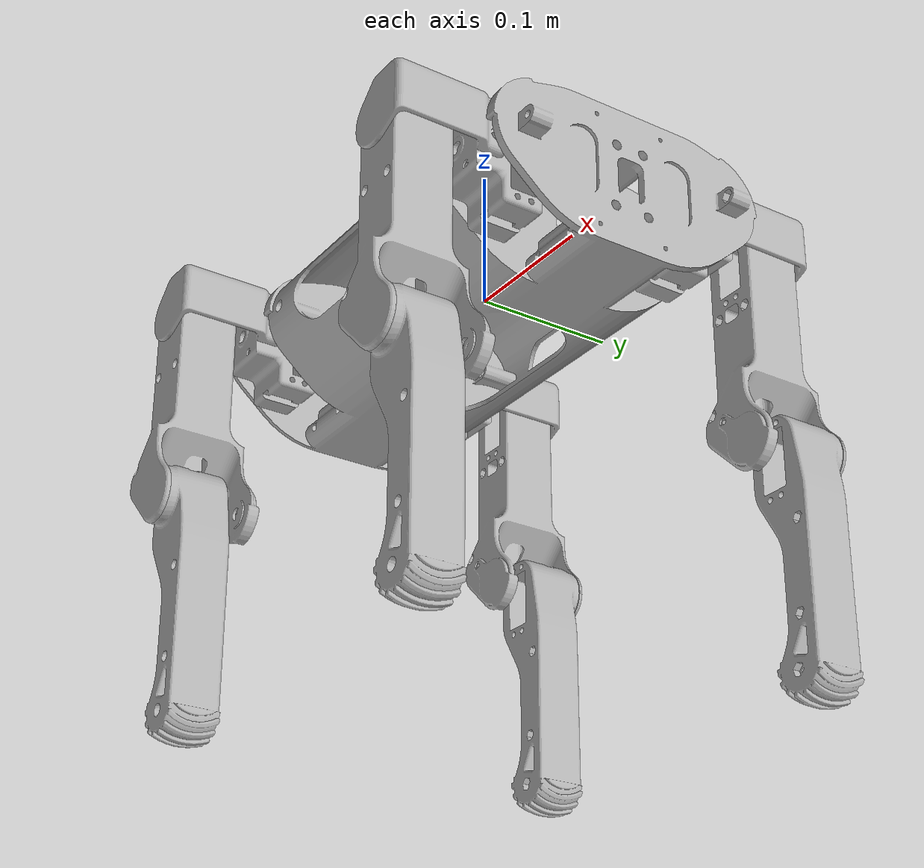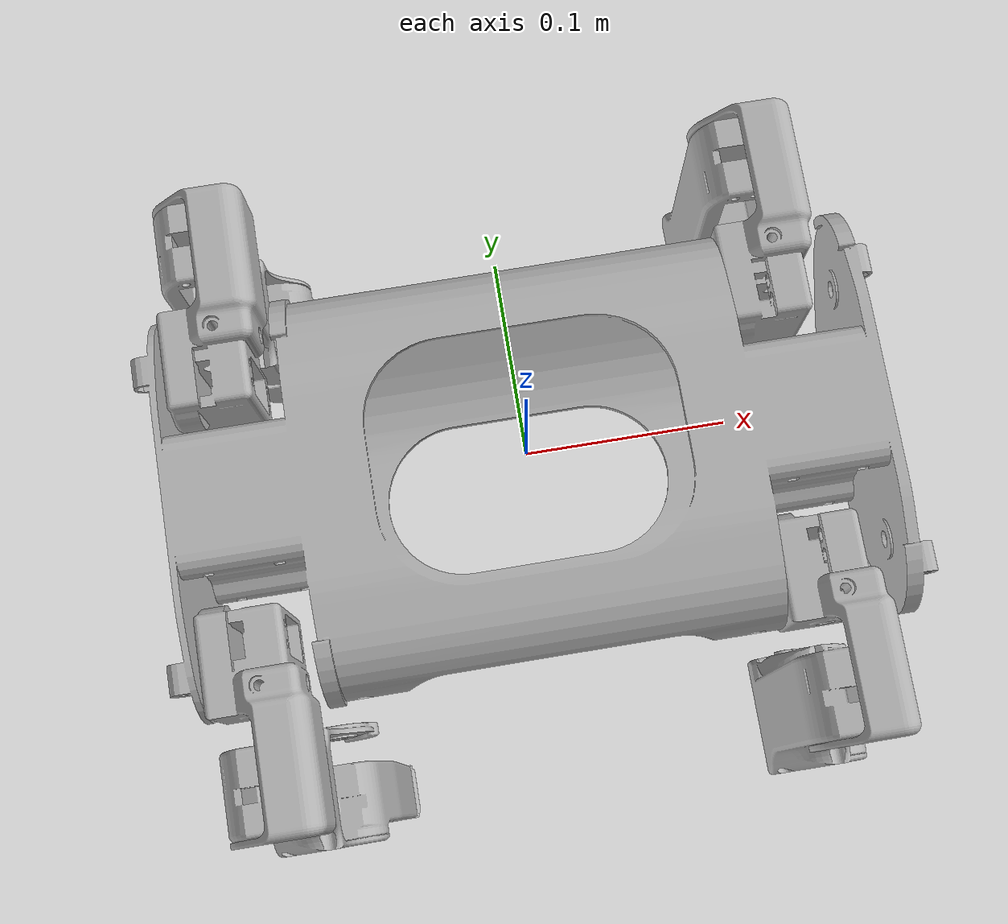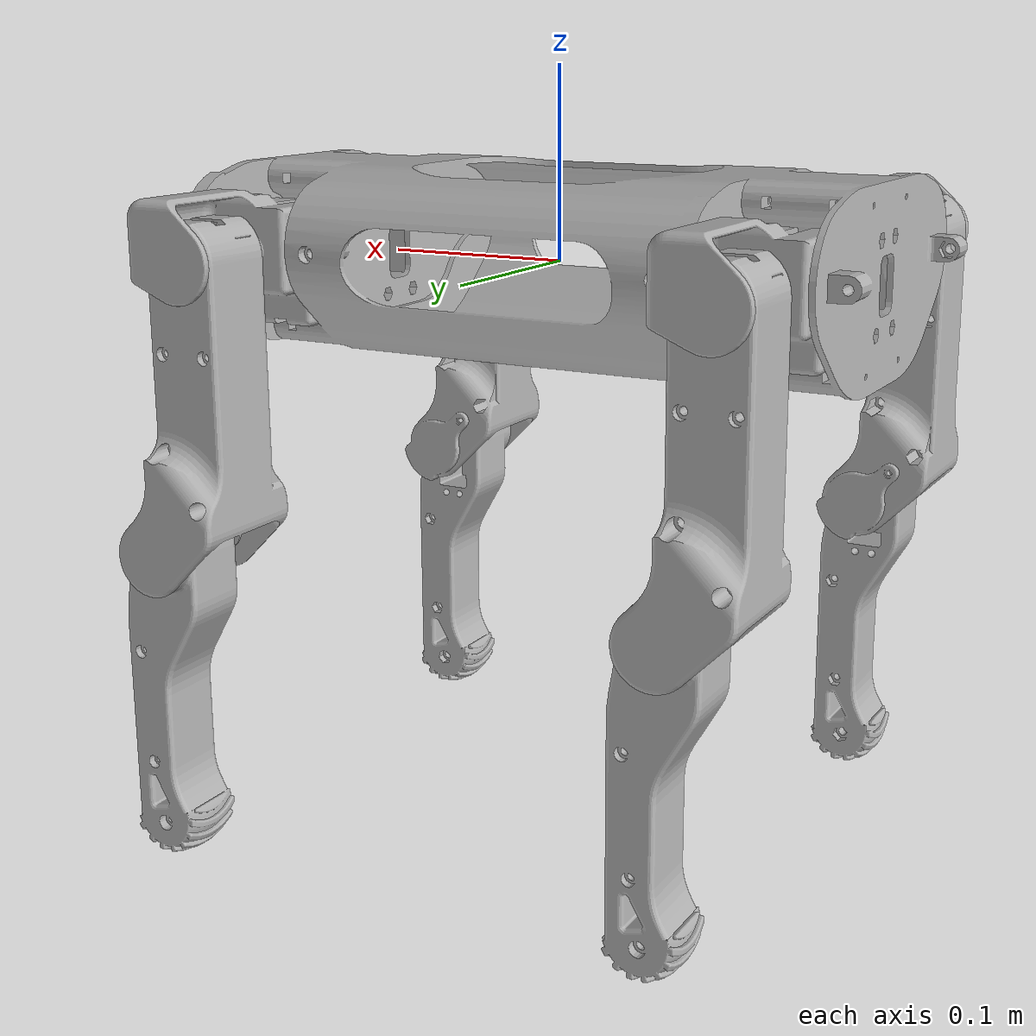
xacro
<?xml version="1.0" ?>
<robot name="BodyIsolate" xmlns:xacro="http://www.ros.org/wiki/xacro">

<xacro:include filename="$(find BodyIsolate_description)/urdf/materials.xacro" />
<xacro:include filename="$(find BodyIsolate_description)/urdf/BodyIsolate.trans" />
<xacro:include filename="$(find BodyIsolate_description)/urdf/BodyIsolate.gazebo" />
<link name="base_link">
  <inertial>
    <origin xyz="0.0009294833926678864 -0.007865537027084635 -0.0009793609078232745" rpy="0 0 0"/>
    <mass value="7.794810015152198"/>
    <inertia ixx="0.025672" iyy="0.135211" izz="0.143448" ixy="-0.0" iyz="0.0" ixz="-5.3e-05"/>
  </inertial>
  <visual>
    <origin xyz="0 0 0" rpy="0 0 0"/>
    <geometry>
      <mesh filename="package://BodyIsolate_description/meshes/base_link.stl" scale="0.001 0.001 0.001"/>
    </geometry>
    <material name="silver"/>
  </visual>
  <collision>
    <origin xyz="0 0 0" rpy="0 0 0"/>
    <geometry>
      <mesh filename="package://BodyIsolate_description/meshes/base_link.stl" scale="0.001 0.001 0.001"/>
    </geometry>
  </collision>
</link>

<link name="LF_shoulder_1">
  <inertial>
    <origin xyz="0.02483325275447823 0.024789583593927474 -0.0012078159033472617" rpy="0 0 0"/>
    <mass value="0.7519601881634892"/>
    <inertia ixx="0.00093" iyy="0.000429" izz="0.00081" ixy="-0.000109" iyz="-0.000161" ixz="-6e-05"/>
  </inertial>
  <visual>
    <origin xyz="-0.10802 -0.057134 -0.008245" rpy="0 0 0"/>
    <geometry>
      <mesh filename="package://BodyIsolate_description/meshes/LF_shoulder_1.stl" scale="0.001 0.001 0.001"/>
    </geometry>
    <material name="silver"/>
  </visual>
  <collision>
    <origin xyz="-0.10802 -0.057134 -0.008245" rpy="0 0 0"/>
    <geometry>
      <mesh filename="package://BodyIsolate_description/meshes/LF_shoulder_1.stl" scale="0.001 0.001 0.001"/>
    </geometry>
  </collision>
</link>

<link name="RF_shoulder_1">
  <inertial>
    <origin xyz="0.024833248126540614 -0.024788628815191754 -0.0012078111368774439" rpy="0 0 0"/>
    <mass value="0.7519609779147036"/>
    <inertia ixx="0.00093" iyy="0.000429" izz="0.00081" ixy="0.000109" iyz="0.000161" ixz="-6e-05"/>
  </inertial>
  <visual>
    <origin xyz="-0.10802 0.072866 -0.008245" rpy="0 0 0"/>
    <geometry>
      <mesh filename="package://BodyIsolate_description/meshes/RF_shoulder_1.stl" scale="0.001 0.001 0.001"/>
    </geometry>
    <material name="silver"/>
  </visual>
  <collision>
    <origin xyz="-0.10802 0.072866 -0.008245" rpy="0 0 0"/>
    <geometry>
      <mesh filename="package://BodyIsolate_description/meshes/RF_shoulder_1.stl" scale="0.001 0.001 0.001"/>
    </geometry>
  </collision>
</link>

<link name="LR_shoulder_1">
  <inertial>
    <origin xyz="0.024833252754477925 0.024789583593927737 -0.0012078159033466736" rpy="0 0 0"/>
    <mass value="0.7519601881635138"/>
    <inertia ixx="0.00093" iyy="0.000429" izz="0.00081" ixy="-0.000109" iyz="-0.000161" ixz="-6e-05"/>
  </inertial>
  <visual>
    <origin xyz="0.16928 -0.057134 -0.008245" rpy="0 0 0"/>
    <geometry>
      <mesh filename="package://BodyIsolate_description/meshes/LR_shoulder_1.stl" scale="0.001 0.001 0.001"/>
    </geometry>
    <material name="silver"/>
  </visual>
  <collision>
    <origin xyz="0.16928 -0.057134 -0.008245" rpy="0 0 0"/>
    <geometry>
      <mesh filename="package://BodyIsolate_description/meshes/LR_shoulder_1.stl" scale="0.001 0.001 0.001"/>
    </geometry>
  </collision>
</link>

<link name="RR_shoulder_1">
  <inertial>
    <origin xyz="0.024833248126540308 -0.024788628815192962 -0.001207811136879954" rpy="0 0 0"/>
    <mass value="0.7519609779146718"/>
    <inertia ixx="0.00093" iyy="0.000429" izz="0.00081" ixy="0.000109" iyz="0.000161" ixz="-6e-05"/>
  </inertial>
  <visual>
    <origin xyz="0.16928 0.072866 -0.008245" rpy="0 0 0"/>
    <geometry>
      <mesh filename="package://BodyIsolate_description/meshes/RR_shoulder_1.stl" scale="0.001 0.001 0.001"/>
    </geometry>
    <material name="silver"/>
  </visual>
  <collision>
    <origin xyz="0.16928 0.072866 -0.008245" rpy="0 0 0"/>
    <geometry>
      <mesh filename="package://BodyIsolate_description/meshes/RR_shoulder_1.stl" scale="0.001 0.001 0.001"/>
    </geometry>
  </collision>
</link>

<link name="LF_upper_leg_1">
  <inertial>
    <origin xyz="0.0010223181011703997 -0.02122322452806688 -0.0653876247063408" rpy="0 0 0"/>
    <mass value="1.0458484256600535"/>
    <inertia ixx="0.003088" iyy="0.00296" izz="0.000565" ixy="1.3e-05" iyz="-3.3e-05" ixz="9.7e-05"/>
  </inertial>
  <visual>
    <origin xyz="-0.12892 -0.148834 -0.008245" rpy="0 0 0"/>
    <geometry>
      <mesh filename="package://BodyIsolate_description/meshes/LF_upper_leg_1.stl" scale="0.001 0.001 0.001"/>
    </geometry>
    <material name="silver"/>
  </visual>
  <collision>
    <origin xyz="-0.12892 -0.148834 -0.008245" rpy="0 0 0"/>
    <geometry>
      <mesh filename="package://BodyIsolate_description/meshes/LF_upper_leg_1.stl" scale="0.001 0.001 0.001"/>
    </geometry>
  </collision>
</link>

<link name="RF_upper_leg_1">
  <inertial>
    <origin xyz="0.0010224410536952278 0.021223711599720807 -0.06538622105271431" rpy="0 0 0"/>
    <mass value="1.0458654261286338"/>
    <inertia ixx="0.003088" iyy="0.00296" izz="0.000565" ixy="-1.3e-05" iyz="3.3e-05" ixz="9.7e-05"/>
  </inertial>
  <visual>
    <origin xyz="-0.12892 0.164566 -0.008245" rpy="0 0 0"/>
    <geometry>
      <mesh filename="package://BodyIsolate_description/meshes/RF_upper_leg_1.stl" scale="0.001 0.001 0.001"/>
    </geometry>
    <material name="silver"/>
  </visual>
  <collision>
    <origin xyz="-0.12892 0.164566 -0.008245" rpy="0 0 0"/>
    <geometry>
      <mesh filename="package://BodyIsolate_description/meshes/RF_upper_leg_1.stl" scale="0.001 0.001 0.001"/>
    </geometry>
  </collision>
</link>

<link name="RR_upper_leg_1">
  <inertial>
    <origin xyz="0.0010224410524758698 0.02122371159972017 -0.06538622105271566" rpy="0 0 0"/>
    <mass value="1.0458654261286542"/>
    <inertia ixx="0.003088" iyy="0.00296" izz="0.000565" ixy="-1.3e-05" iyz="3.3e-05" ixz="9.7e-05"/>
  </inertial>
  <visual>
    <origin xyz="0.14838 0.164566 -0.008245" rpy="0 0 0"/>
    <geometry>
      <mesh filename="package://BodyIsolate_description/meshes/RR_upper_leg_1.stl" scale="0.001 0.001 0.001"/>
    </geometry>
    <material name="silver"/>
  </visual>
  <collision>
    <origin xyz="0.14838 0.164566 -0.008245" rpy="0 0 0"/>
    <geometry>
      <mesh filename="package://BodyIsolate_description/meshes/RR_upper_leg_1.stl" scale="0.001 0.001 0.001"/>
    </geometry>
  </collision>
</link>

<link name="LR_upper_leg_1">
  <inertial>
    <origin xyz="0.0010223181013646054 -0.021223224528065382 -0.06538762470634304" rpy="0 0 0"/>
    <mass value="1.0458484256600902"/>
    <inertia ixx="0.003088" iyy="0.00296" izz="0.000565" ixy="1.3e-05" iyz="-3.3e-05" ixz="9.7e-05"/>
  </inertial>
  <visual>
    <origin xyz="0.14838 -0.148834 -0.008245" rpy="0 0 0"/>
    <geometry>
      <mesh filename="package://BodyIsolate_description/meshes/LR_upper_leg_1.stl" scale="0.001 0.001 0.001"/>
    </geometry>
    <material name="silver"/>
  </visual>
  <collision>
    <origin xyz="0.14838 -0.148834 -0.008245" rpy="0 0 0"/>
    <geometry>
      <mesh filename="package://BodyIsolate_description/meshes/LR_upper_leg_1.stl" scale="0.001 0.001 0.001"/>
    </geometry>
  </collision>
</link>

<link name="LF_lower_leg_1">
  <inertial>
    <origin xyz="0.007439395719606973 -0.023891955972947132 -0.07198444745387553" rpy="0 0 0"/>
    <mass value="1.0996050742499592"/>
    <inertia ixx="0.003723" iyy="0.003768" izz="0.000289" ixy="4e-06" iyz="-2.2e-05" ixz="0.000207"/>
  </inertial>
  <visual>
    <origin xyz="-0.14892 -0.156984 0.140415" rpy="0 0 0"/>
    <geometry>
      <mesh filename="package://BodyIsolate_description/meshes/LF_lower_leg_1.stl" scale="0.001 0.001 0.001"/>
    </geometry>
    <material name="silver"/>
  </visual>
  <collision>
    <origin xyz="-0.14892 -0.156984 0.140415" rpy="0 0 0"/>
    <geometry>
      <mesh filename="package://BodyIsolate_description/meshes/LF_lower_leg_1.stl" scale="0.001 0.001 0.001"/>
    </geometry>
  </collision>
</link>

<link name="RF_lower_leg_1">
  <inertial>
    <origin xyz="0.007439392221484098 0.023892885345322662 -0.07198444174015034" rpy="0 0 0"/>
    <mass value="1.0996043860818394"/>
    <inertia ixx="0.003723" iyy="0.003768" izz="0.000289" ixy="-4e-06" iyz="2.2e-05" ixz="0.000207"/>
  </inertial>
  <visual>
    <origin xyz="-0.14892 0.172716 0.140415" rpy="0 0 0"/>
    <geometry>
      <mesh filename="package://BodyIsolate_description/meshes/RF_lower_leg_1.stl" scale="0.001 0.001 0.001"/>
    </geometry>
    <material name="silver"/>
  </visual>
  <collision>
    <origin xyz="-0.14892 0.172716 0.140415" rpy="0 0 0"/>
    <geometry>
      <mesh filename="package://BodyIsolate_description/meshes/RF_lower_leg_1.stl" scale="0.001 0.001 0.001"/>
    </geometry>
  </collision>
</link>

<link name="RR_lower_leg_1">
  <inertial>
    <origin xyz="0.007439392221484195 0.02389288534532258 -0.07198444174015028" rpy="0 0 0"/>
    <mass value="1.099604386081836"/>
    <inertia ixx="0.003723" iyy="0.003768" izz="0.000289" ixy="-4e-06" iyz="2.2e-05" ixz="0.000207"/>
  </inertial>
  <visual>
    <origin xyz="0.12838 0.172716 0.140415" rpy="0 0 0"/>
    <geometry>
      <mesh filename="package://BodyIsolate_description/meshes/RR_lower_leg_1.stl" scale="0.001 0.001 0.001"/>
    </geometry>
    <material name="silver"/>
  </visual>
  <collision>
    <origin xyz="0.12838 0.172716 0.140415" rpy="0 0 0"/>
    <geometry>
      <mesh filename="package://BodyIsolate_description/meshes/RR_lower_leg_1.stl" scale="0.001 0.001 0.001"/>
    </geometry>
  </collision>
</link>

<link name="LR_lower_leg_1">
  <inertial>
    <origin xyz="0.007439395719606473 -0.023891955972947132 -0.0719844474538755" rpy="0 0 0"/>
    <mass value="1.0996050742499566"/>
    <inertia ixx="0.003723" iyy="0.003768" izz="0.000289" ixy="4e-06" iyz="-2.2e-05" ixz="0.000207"/>
  </inertial>
  <visual>
    <origin xyz="0.12838 -0.156984 0.140415" rpy="0 0 0"/>
    <geometry>
      <mesh filename="package://BodyIsolate_description/meshes/LR_lower_leg_1.stl" scale="0.001 0.001 0.001"/>
    </geometry>
    <material name="silver"/>
  </visual>
  <collision>
    <origin xyz="0.12838 -0.156984 0.140415" rpy="0 0 0"/>
    <geometry>
      <mesh filename="package://BodyIsolate_description/meshes/LR_lower_leg_1.stl" scale="0.001 0.001 0.001"/>
    </geometry>
  </collision>
</link>

<joint name="LF_hip" type="continuous">
  <origin xyz="0.10802 0.057134 0.008245" rpy="0 0 0"/>
  <parent link="base_link"/>
  <child link="LF_shoulder_1"/>
  <axis xyz="1.0 0.0 -0.0"/>
</joint>

<joint name="RF_hip" type="continuous">
  <origin xyz="0.10802 -0.072866 0.008245" rpy="0 0 0"/>
  <parent link="base_link"/>
  <child link="RF_shoulder_1"/>
  <axis xyz="-1.0 -0.0 0.0"/>
</joint>

<joint name="LR_hip" type="continuous">
  <origin xyz="-0.16928 0.057134 0.008245" rpy="0 0 0"/>
  <parent link="base_link"/>
  <child link="LR_shoulder_1"/>
  <axis xyz="1.0 0.0 -0.0"/>
</joint>

<joint name="RR_hip" type="continuous">
  <origin xyz="-0.16928 -0.072866 0.008245" rpy="0 0 0"/>
  <parent link="base_link"/>
  <child link="RR_shoulder_1"/>
  <axis xyz="-1.0 -0.0 0.0"/>
</joint>

<joint name="LF_shoulder" type="continuous">
  <origin xyz="0.0209 0.0917 0.0" rpy="0 0 0"/>
  <parent link="LF_shoulder_1"/>
  <child link="LF_upper_leg_1"/>
  <axis xyz="0.0 -1.0 0.0"/>
</joint>

<joint name="RF_shoulder" type="continuous">
  <origin xyz="0.0209 -0.0917 0.0" rpy="0 0 0"/>
  <parent link="RF_shoulder_1"/>
  <child link="RF_upper_leg_1"/>
  <axis xyz="0.0 -1.0 0.0"/>
</joint>

<joint name="RR_shoulder" type="continuous">
  <origin xyz="0.0209 -0.0917 0.0" rpy="0 0 0"/>
  <parent link="RR_shoulder_1"/>
  <child link="RR_upper_leg_1"/>
  <axis xyz="0.0 -1.0 0.0"/>
</joint>

<joint name="LR_shoulder" type="continuous">
  <origin xyz="0.0209 0.0917 0.0" rpy="0 0 0"/>
  <parent link="LR_shoulder_1"/>
  <child link="LR_upper_leg_1"/>
  <axis xyz="0.0 -1.0 0.0"/>
</joint>

<joint name="LF_elbow" type="continuous">
  <origin xyz="0.02 0.00815 -0.14866" rpy="0 0 0"/>
  <parent link="LF_upper_leg_1"/>
  <child link="LF_lower_leg_1"/>
  <axis xyz="0.0 -1.0 0.0"/>
</joint>

<joint name="RF_elbow" type="continuous">
  <origin xyz="0.02 -0.00815 -0.14866" rpy="0 0 0"/>
  <parent link="RF_upper_leg_1"/>
  <child link="RF_lower_leg_1"/>
  <axis xyz="0.0 -1.0 0.0"/>
</joint>

<joint name="RR_elbow" type="continuous">
  <origin xyz="0.02 -0.00815 -0.14866" rpy="0 0 0"/>
  <parent link="RR_upper_leg_1"/>
  <child link="RR_lower_leg_1"/>
  <axis xyz="0.0 -1.0 0.0"/>
</joint>

<joint name="LR_elbow" type="continuous">
  <origin xyz="0.02 0.00815 -0.14866" rpy="0 0 0"/>
  <parent link="LR_upper_leg_1"/>
  <child link="LR_lower_leg_1"/>
  <axis xyz="0.0 -1.0 0.0"/>
</joint>

</robot>

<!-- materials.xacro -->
<robot name="BodyIsolate" xmlns:xacro="http://www.ros.org/wiki/xacro" >

<material name="silver">
  <color rgba="0.700 0.700 0.700 1.000"/>
</material>

</robot>

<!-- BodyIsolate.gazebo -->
<robot name="BodyIsolate" xmlns:xacro="http://www.ros.org/wiki/xacro" >

<xacro:property name="body_color" value="Gazebo/Silver" />

<gazebo>
  <plugin name="control" filename="libgazebo_ros_control.so"/>
</gazebo>
<gazebo reference="base_link">
  <material>${body_color}</material>
  <mu1>0.2</mu1>
  <mu2>0.2</mu2>
  <selfCollide>true</selfCollide>
  <gravity>true</gravity>
</gazebo>

<gazebo reference="LF_shoulder_1">
  <material>${body_color}</material>
  <mu1>0.2</mu1>
  <mu2>0.2</mu2>
  <selfCollide>true</selfCollide>
</gazebo>

<gazebo reference="RF_shoulder_1">
  <material>${body_color}</material>
  <mu1>0.2</mu1>
  <mu2>0.2</mu2>
  <selfCollide>true</selfCollide>
</gazebo>

<gazebo reference="LR_shoulder_1">
  <material>${body_color}</material>
  <mu1>0.2</mu1>
  <mu2>0.2</mu2>
  <selfCollide>true</selfCollide>
</gazebo>

<gazebo reference="RR_shoulder_1">
  <material>${body_color}</material>
  <mu1>0.2</mu1>
  <mu2>0.2</mu2>
  <selfCollide>true</selfCollide>
</gazebo>

<gazebo reference="LF_upper_leg_1">
  <material>${body_color}</material>
  <mu1>0.2</mu1>
  <mu2>0.2</mu2>
  <selfCollide>true</selfCollide>
</gazebo>

<gazebo reference="RF_upper_leg_1">
  <material>${body_color}</material>
  <mu1>0.2</mu1>
  <mu2>0.2</mu2>
  <selfCollide>true</selfCollide>
</gazebo>

<gazebo reference="RR_upper_leg_1">
  <material>${body_color}</material>
  <mu1>0.2</mu1>
  <mu2>0.2</mu2>
  <selfCollide>true</selfCollide>
</gazebo>

<gazebo reference="LR_upper_leg_1">
  <material>${body_color}</material>
  <mu1>0.2</mu1>
  <mu2>0.2</mu2>
  <selfCollide>true</selfCollide>
</gazebo>

<gazebo reference="LF_lower_leg_1">
  <material>${body_color}</material>
  <mu1>0.2</mu1>
  <mu2>0.2</mu2>
  <selfCollide>true</selfCollide>
</gazebo>

<gazebo reference="RF_lower_leg_1">
  <material>${body_color}</material>
  <mu1>0.2</mu1>
  <mu2>0.2</mu2>
  <selfCollide>true</selfCollide>
</gazebo>

<gazebo reference="RR_lower_leg_1">
  <material>${body_color}</material>
  <mu1>0.2</mu1>
  <mu2>0.2</mu2>
  <selfCollide>true</selfCollide>
</gazebo>

<gazebo reference="LR_lower_leg_1">
  <material>${body_color}</material>
  <mu1>0.2</mu1>
  <mu2>0.2</mu2>
  <selfCollide>true</selfCollide>
</gazebo>

</robot>
